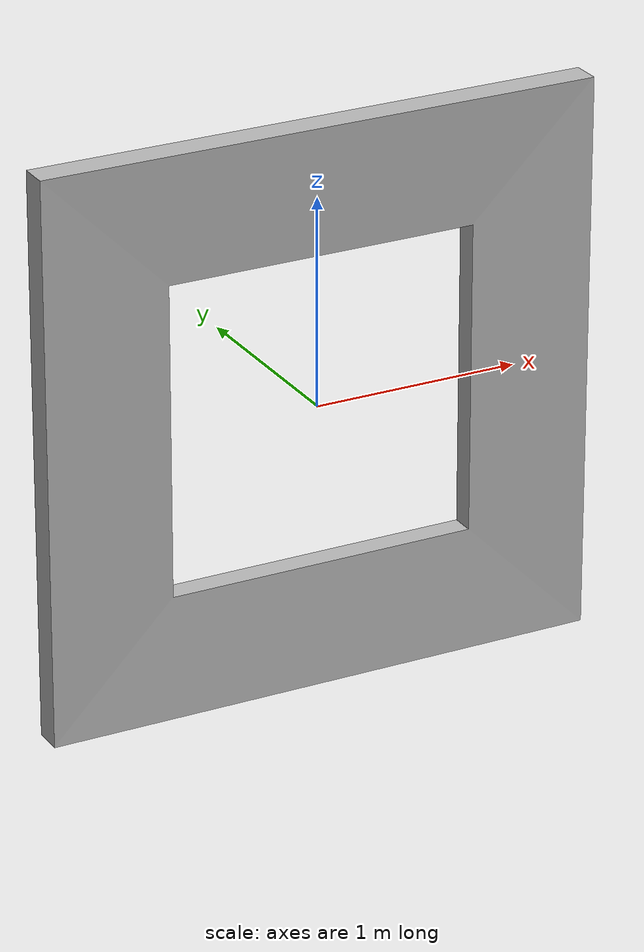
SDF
<?xml version="1.0" ?>
<sdf version="1.6">
  <model name="gate">
    <static>true</static>
    <link name="link">
      <visual name="visual">
        <geometry>
          <mesh>
            <scale>1 1 1</scale>
            <uri>model://gate/meshes/gate.dae</uri>
          </mesh>
        </geometry>
      </visual>
    </link>
  </model>
</sdf>
